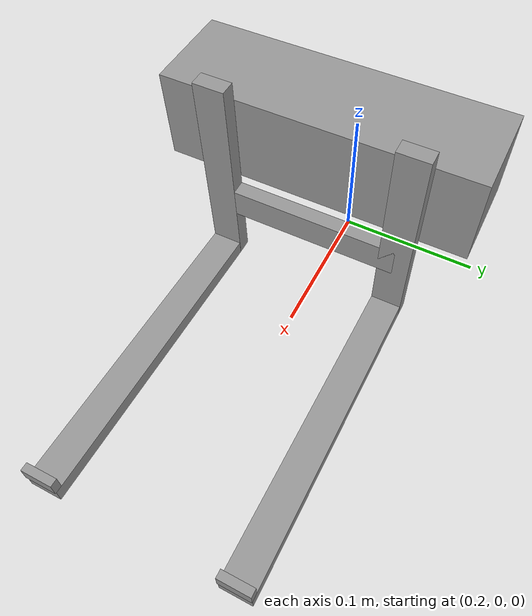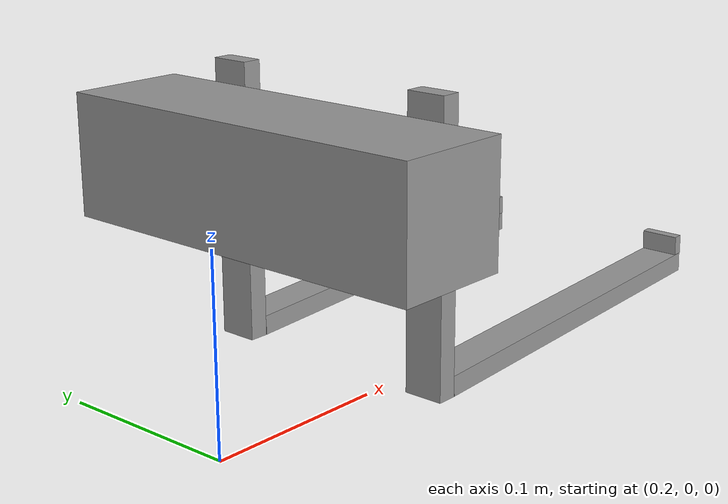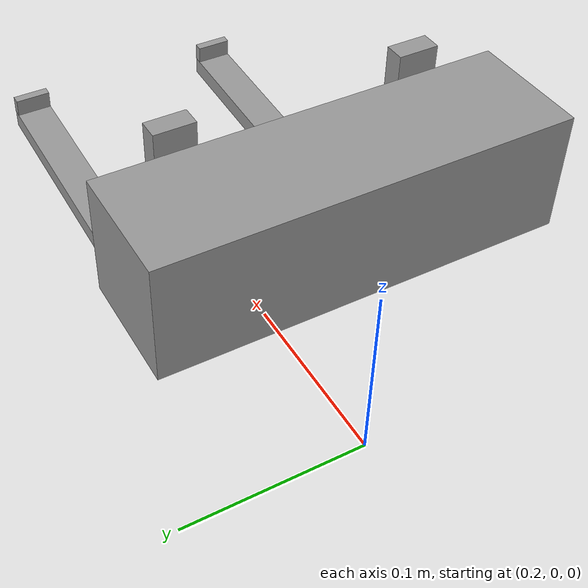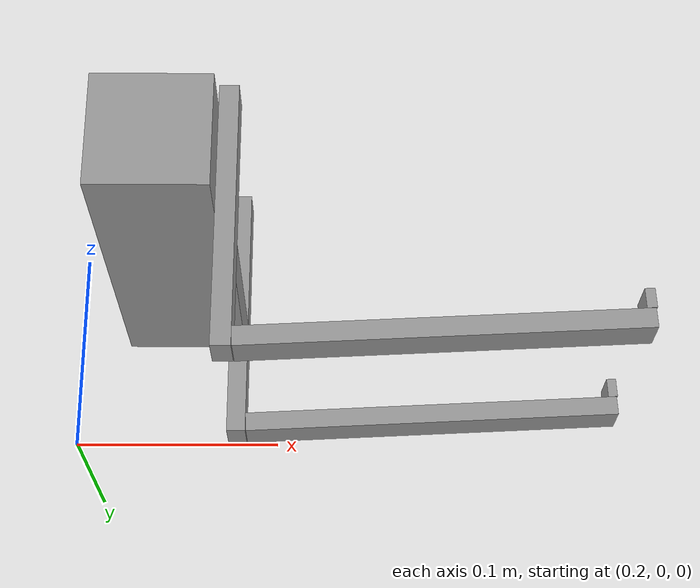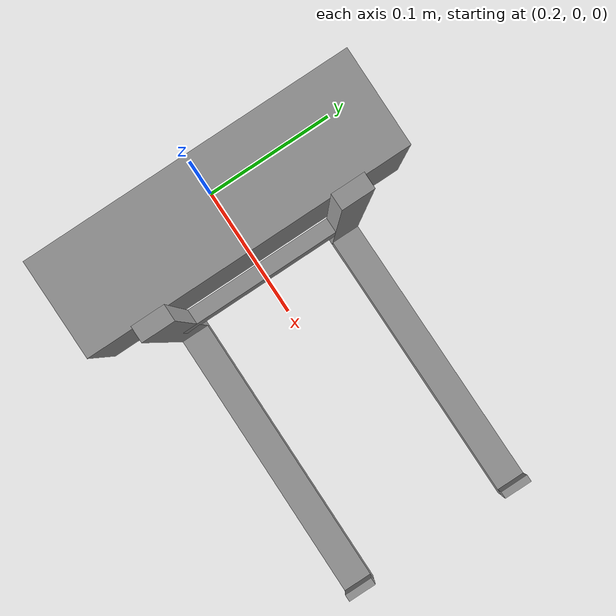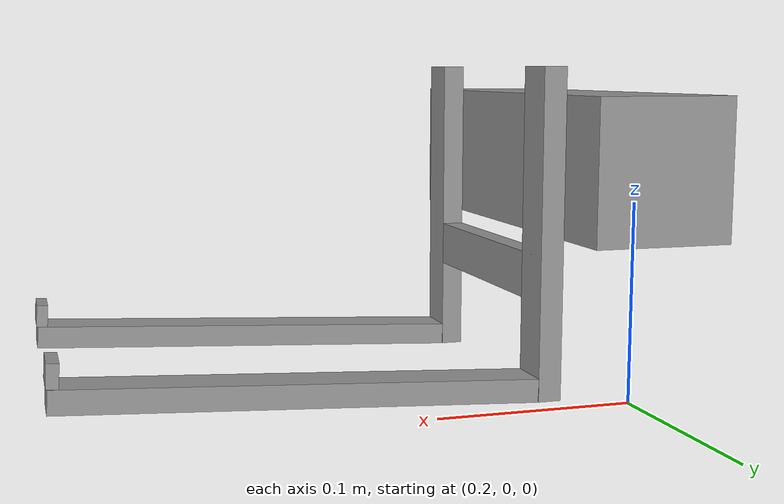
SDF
<?xml version="1.0" ?>
<sdf version="1.5">
  <model name="forklift">
    <pose>0 0 0 0 0 0</pose>
    <static>false</static>
    <!-- Base/Support link -->
    <link name="base_link">
      <inertial>
        <pose>0.237624 0 0.122112 0 0 0</pose>
        <mass>0.1</mass>
        <inertia>
          <ixx>0.00101506</ixx>
          <ixy>0</ixy>
          <ixz>-2.93069e-05</ixz>
          <iyy>0.00107209</iyy>
          <iyz>0</iyz>
          <izz>0.00105703</izz>
        </inertia>
      </inertial>
      <collision name="base_link_collision">
        <pose>0.24 0 0.123333 0 0 0</pose>
        <geometry>
          <box>
            <size>0.06 0.2 0.06</size>
          </box>
        </geometry>
      </collision>
      <visual name="base_link_visual">
        <pose>0.24 0 0.123333 0 0 0</pose>
        <geometry>
          <box>
            <size>0.06 0.2 0.06</size>
          </box>
        </geometry>
        <material>
          <script>
            <uri>file://media/materials/scripts/gazebo.material</uri>
            <name>Gazebo/Grey</name>
          </script>
        </material>
      </visual>
      <gravity>1</gravity>
      <velocity_decay/>
    </link>

    <!-- Fingers link -->
    <link name='fingers_link'>
      <pose>0.275 0 0.076667 0 0 0</pose>
      <inertial>
        <pose>0.087857 0 -0.014286 0 0 0</pose>
        <mass>0.7</mass>
        <inertia>
          <ixx>0.00957381</ixx>
          <ixy>0</ixy>
          <ixz>0.00107643</ixz>
          <iyy>0.0124168</iyy>
          <iyz>0</iyz>
          <izz>0.014163</izz>
        </inertia>
      </inertial>

      <!-- Base -->
      <collision name='fingers_base_collision'>
        <pose>0 0 0 0 0 0</pose>
        <geometry>
          <box>
            <size>0.01 0.1 0.02</size>
          </box>
        </geometry>
      </collision>
      <visual name='fingers_base_visual'>
        <pose>0 0 0 0 0 0</pose>
        <geometry>
          <box>
            <size>0.01 0.12 0.02</size>
          </box>
        </geometry>
        <material>
          <script>
            <uri>file://media/materials/scripts/gazebo.material</uri>
            <name>Gazebo/Grey</name>
          </script>
        </material>
      </visual>

      <!-- Left horizontal finger -->
      <collision name='finger_left_horizontal_collision'>
        <pose>0.105 -0.06 -0.041667 0 1.5208 0</pose>
        <geometry>
          <box>
            <size>0.01 0.02 0.2</size>
          </box>
        </geometry>
      </collision>
      <visual name='finger_left_horizontal_visual'>
        <pose>0.105 -0.06 -0.041667 0 1.5208 0</pose>
        <geometry>
          <box>
            <size>0.01 0.02 0.2</size>
          </box>
        </geometry>
        <material>
          <script>
            <uri>file://media/materials/scripts/gazebo.material</uri>
            <name>Gazebo/Grey</name>
          </script>
        </material>
      </visual>

      <!-- Left finger, horizontal end -->
      <collision name='finger_left_horizontal_end_collision'>
        <pose>0.2025 -0.06 -0.026667 0 1.5208 0</pose>
        <geometry>
          <box>
            <size>0.01 0.02 0.005</size>
          </box>
        </geometry>
      </collision>
      <visual name='finger_left_horizontal_end_visual'>
        <pose>0.2025 -0.06 -0.026667 0 1.5208 0</pose>
        <geometry>
          <box>
            <size>0.01 0.02 0.005</size>
          </box>
        </geometry>
        <material>
          <script>
            <uri>file://media/materials/scripts/gazebo.material</uri>
            <name>Gazebo/Grey</name>
          </script>
        </material>
      </visual>

      <!-- Right horizontal finger -->
      <collision name='finger_right_horizontal_collision'>
        <pose>0.105 0.06 -0.041667 0 1.5208 0</pose>
        <geometry>
          <box>
            <size>0.01 0.02 0.2</size>
          </box>
        </geometry>
      </collision>
      <visual name='finger_right_horizontal_visual'>
        <pose>0.105 0.06 -0.041667 0 1.5208 0</pose>
        <geometry>
          <box>
            <size>0.01 0.02 0.2</size>
          </box>
        </geometry>
        <material>
          <script>
            <uri>file://media/materials/scripts/gazebo.material</uri>
            <name>Gazebo/Grey</name>
          </script>
        </material>
      </visual>

      <!-- Right finger, horizontal end -->
      <collision name='finger_right_horizontal_end_collision'>
        <pose>0.2025 0.06 -0.026667 0 1.5208 0</pose>
        <geometry>
          <box>
            <size>0.01 0.02 0.005</size>
          </box>
        </geometry>
      </collision>
      <visual name='finger_right_horizontal_end_visual'>
        <pose>0.2025 0.06 -0.026667 0 1.5208 0</pose>
        <geometry>
          <box>
            <size>0.01 0.02 0.005</size>
          </box>
        </geometry>
        <material>
          <script>
            <uri>file://media/materials/scripts/gazebo.material</uri>
            <name>Gazebo/Grey</name>
          </script>
        </material>
      </visual>

      <!-- Left finger, vertical support -->
      <collision name='finger_left_vertical_collision'>
        <pose>0 -0.06 0.018333 0 0 0</pose>
        <geometry>
          <box>
            <size>0.01 0.02 0.14</size>
          </box>
        </geometry>
      </collision>
      <visual name='finger_left_vertical_visual'>
        <pose>0 -0.06 0.018333 0 0 0</pose>
        <geometry>
          <box>
            <size>0.01 0.02 0.14</size>
          </box>
        </geometry>
        <material>
          <script>
            <uri>file://media/materials/scripts/gazebo.material</uri>
            <name>Gazebo/Grey</name>
          </script>
        </material>
      </visual>

      <!-- Right finger, vertical support -->
     <collision name='finger_right_vertical_collision'>
        <pose>0 0.06 0.018333 0 0 0</pose>
        <geometry>
          <box>
            <size>0.01 0.02 0.14</size>
          </box>
        </geometry>
      </collision>
      <visual name='finger_right_vertical_visual'>
        <pose>0 0.06 0.018333 0 0 0</pose>
        <geometry>
          <box>
            <size>0.01 0.02 0.14</size>
          </box>
        </geometry>
        <material>
          <script>
            <uri>file://media/materials/scripts/gazebo.material</uri>
            <name>Gazebo/Grey</name>
          </script>
        </material>
      </visual>
      <velocity_decay/>
      <gravity>1</gravity>
    </link>

    <!-- Prismatic joint -->
    <joint name='forklift_joint' type='prismatic'>
      <child>fingers_link</child>
      <parent>base_link</parent>
      <axis>
        <xyz>0 0 1</xyz>
        <limit>
          <lower>0</lower>
          <upper>10.08</upper>
          <effort>1000</effort>
          <velocity>0.2</velocity>
        </limit>
        <dynamics>
          <damping>10</damping>
          <friction>0</friction>
          <spring_reference>0</spring_reference>
          <spring_stiffness>0</spring_stiffness>
        </dynamics>
        <use_parent_model_frame>1</use_parent_model_frame>
      </axis>
    </joint>

    <!-- Plugin controller -->
  </model>
</sdf>
